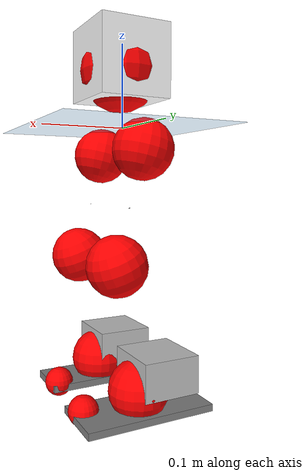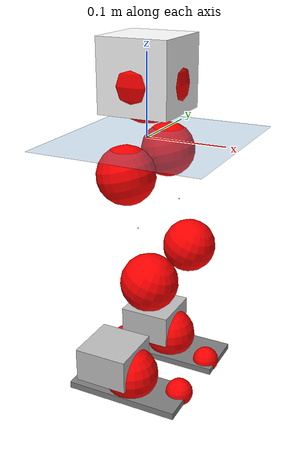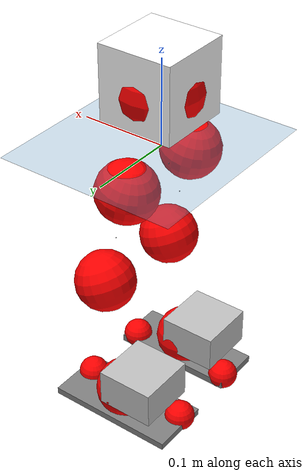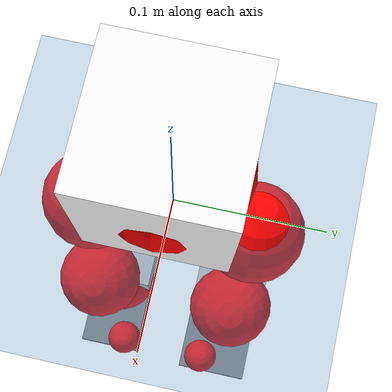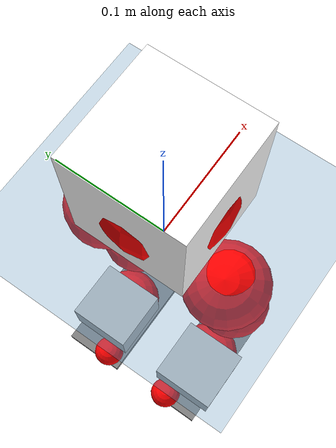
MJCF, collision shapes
<mujoco model="pi_12dof_release_v1">
  <compiler angle="radian" assetdir="assets" balanceinertia="true" inertiafromgeom="false"/>

  <option timestep="0.005" density="1.2" viscosity="2e-05"/>

  <size nkey="1"/>

  <visual>
    <quality shadowsize="8192"/>
    <map shadowclip="0.5"/>
  </visual>

  <default>
    <default class="/">
      <joint armature="0.01" damping="0.01" frictionloss="0.01"/>
      <geom contype="0" conaffinity="0" group="1" solref="-1000 -80"/>
      <site size="0.01 0.005 0.005" group="5"/>
      <general forcelimited="true" biastype="affine" gainprm="20" biasprm="0 -20 -0.5"/>
      <default class="foot">
        <geom size="0.0845 0.036 0.005" type="box" condim="6" group="4" priority="1" friction="0.9 0.2 0.2" solimp="0.015 1 0.005"/>
      </default>
      <default class="reward_collision_sphere">
        <geom group="5" rgba="1 0 0 1"/>
      </default>
    </default>
  </default>

  <asset>
    <texture type="skybox" colorspace="auto" name="//unnamed_texture_0" builtin="gradient" rgb1="0.95 0.95 0.95" rgb2="0.95 0.95 0.95" width="100" height="600"/>
    <texture type="2d" colorspace="auto" name="texplane" builtin="checker" rgb1="0.345 0.575 0.748" rgb2="0.345 0.575 0.748" markrgb="1 1 1" width="512" height="512"/>
    <material name="MatPlane" class="/" texture="texplane" texuniform="true" texrepeat="2 2" specular="0.9"/>
    <mesh name="baselink_1" class="/" file="baselink_1.STL"/>
    <mesh name="r_hip_pitch_link" class="/" file="r_hip_pitch_link.STL"/>
    <mesh name="r_hip_roll_link" class="/" file="r_hip_roll_link.STL"/>
    <mesh name="r_thigh_link" class="/" file="r_thigh_link.STL"/>
    <mesh name="r_calf_link" class="/" file="r_calf_link.STL"/>
    <mesh name="r_ankle_pitch_link" class="/" file="r_ankle_pitch_link.STL"/>
    <mesh name="r_ankle_roll_link" class="/" file="r_ankle_roll_link.STL"/>
    <mesh name="l_hip_pitch_link" class="/" file="l_hip_pitch_link.STL"/>
    <mesh name="l_hip_roll_link" class="/" file="l_hip_roll_link.STL"/>
    <mesh name="l_thigh_link" class="/" file="l_thigh_link.STL"/>
    <mesh name="l_calf_link" class="/" file="l_calf_link.STL"/>
    <mesh name="l_ankle_pitch_link" class="/" file="l_ankle_pitch_link.STL"/>
    <mesh name="l_ankle_roll_link" class="/" file="l_ankle_roll_link.STL"/>
  </asset>

  <worldbody>
    <geom name="floor" class="/" size="100 100 0.125" type="plane" group="0" material="MatPlane"/>
    <light name="toplight_shadow" class="/" pos="0 0 5" dir="0.0990148 0.0990148 -0.990148" type="directional" ambient="0.04 0.04 0.04" diffuse="0.55 0.55 0.55" specular="0.12 0.12 0.12"/>
    <light name="toplight_fill" class="/" pos="0 0 5" dir="0.0990148 0.0990148 -0.990148" type="directional" castshadow="false" ambient="0.04 0.04 0.04" diffuse="0.3 0.3 0.3" specular="0.08 0.08 0.08"/>
    <body name="trunk" pos="0.00224479 -0.00041426 0.000772449" quat="1 -0.000847597 -0.000407762 3.37463e-05">
      <inertial pos="2.69342e-05 -0.00164868 0.0374521" quat="0.695276 0.00981061 0.00949745 0.718613" mass="1.37436" diaginertia="0.00720072 0.00191992 0.00294425"/>
      <joint name="//unnamed_joint_0" type="free"/>
      <geom name="//unnamed_geom_1" class="/" type="mesh" density="0" rgba="1 1 1 1" mesh="baselink_1"/>
      <geom name="//unnamed_geom_2" class="/" size="0.0436022 0.0436022 0.0436022" pos="0 0 0.0750211" type="box" rgba="1 1 1 1"/>
      <geom name="//unnamed_geom_3" class="reward_collision_sphere" size="0.0479624" pos="0 0 0.0656434"/>
      <site name="imu" class="/" pos="-0.00250584 -0.00218692 0.00867999" size="0.00872044"/>
      <camera name="track" class="/" pos="0 -1.47121 0" quat="0.707107 0.707107 0 0" mode="trackcom"/>
      <camera name="ego_camera" class="/" pos="0.0707075 0 0.168797" quat="-0.5 -0.5 0.5 0.5"/>
      <body name="r_hip_pitch_link" pos="0.000150974 -0.0161073 -0.0313904" quat="0.992228 0.00036141 -0.124433 0.000411135">
        <inertial pos="0.000546459 -0.0422515 -0.000219785" quat="-0.0186942 0.704066 -0.0283819 0.70932" mass="0.24656" diaginertia="8.27306e-05 2.08682e-05 6.01139e-05"/>
        <joint name="r_hip_pitch_joint" class="/" pos="0 0 0" axis="-0.0025347 -0.999996 -0.00125066" stiffness="0.000996665" range="-1.73534 1.25554" armature="0.00903824" damping="0.0192731" frictionloss="0.00902735"/>
        <geom name="//unnamed_geom_4" class="/" type="mesh" density="0" rgba="0.75294 0.75294 0.75294 1" mesh="r_hip_pitch_link"/>
        <geom name="//unnamed_geom_5" class="/" size="0.000436022 0.000436022 0.000436022" type="box" rgba="0.75294 0.75294 0.75294 1"/>
        <body name="r_hip_roll_link" pos="-0.000271822 -0.0401629 0.000253065" quat="1 0.000295123 -0.000393915 -0.000318922">
          <inertial pos="-0.000268201 -0.000431342 -0.0595362" quat="0.705883 -0.0792132 -0.0826052 0.699021" mass="0.254624" diaginertia="0.000244775 5.97561e-05 9.5073e-05"/>
          <joint name="r_hip_roll_joint" class="/" pos="0 0 0" axis="-0.999993 0.0033023 0.00188602" stiffness="0.000458936" range="-0.107299 0.485239" armature="0.0091452" damping="0" frictionloss="0.0092763"/>
          <geom name="//unnamed_geom_6" class="/" type="mesh" density="0" rgba="0.75294 0.75294 0.75294 1" mesh="r_hip_roll_link"/>
          <geom name="//unnamed_geom_7" class="/" size="0.000436022 0.000436022 0.000436022" type="box" rgba="0.75294 0.75294 0.75294 1"/>
          <geom name="//unnamed_geom_8" class="reward_collision_sphere" size="0.0348818"/>
          <body name="r_thigh_link" pos="-0.00108651 -0.00096478 -0.0640296" quat="1 -9.13095e-06 2.5471e-05 1.31607e-06">
            <inertial pos="-0.000735276 0.000954667 -0.0442229" quat="0.735109 0.677939 0.0014059 -0.00355928" mass="0.0747177" diaginertia="9.59804e-05 2.10019e-05 4.27289e-05"/>
            <joint name="r_thigh_joint" class="/" pos="0 0 0" axis="0.00177192 0.0019228 -0.999997" range="-0.322005 0.588991" armature="0.00881239" damping="0.0016982" frictionloss="0.0077357"/>
            <geom name="//unnamed_geom_9" class="/" type="mesh" density="0" rgba="0.75294 0.75294 0.75294 1" mesh="r_thigh_link"/>
            <geom name="//unnamed_geom_10" class="/" size="0.000436022 0.000436022 0.000436022" type="box" rgba="0.75294 0.75294 0.75294 1"/>
            <body name="r_calf_link" pos="-0.00109326 -0.00201535 -0.0679304" quat="0.947549 -0.000138786 0.319611 -0.000319373">
              <inertial pos="-0.00107766 -0.00218754 -0.0652115" quat="0.999953 -0.00565747 -0.00577577 0.00542521" mass="0.5361" diaginertia="0.00260843 0.000757649 0.000126928"/>
              <joint name="r_calf_joint" class="/" pos="0 0 0" axis="-0.00309758 -0.999995 -0.000760932" range="-1.60788 0.637403" armature="0.00866424" damping="0.00802394" frictionloss="0.00908128"/>
              <geom name="//unnamed_geom_11" class="/" type="mesh" density="0" rgba="0.75294 0.75294 0.75294 1" mesh="r_calf_link"/>
              <geom name="//unnamed_geom_12" class="/" size="0.000436022 0.000436022 0.000436022" type="box" rgba="0.75294 0.75294 0.75294 1"/>
              <geom name="//unnamed_geom_13" class="reward_collision_sphere" size="0.0348818"/>
              <body name="r_ankle_pitch_link" pos="-0.000361236 -0.00123429 -0.131516" quat="0.98007 -2.34391e-05 -0.19865 1.34257e-05">
                <inertial pos="0.0041525 0.00182365 -0.000867032" quat="0.00223996 0.707618 -0.00259443 0.706587" mass="0.1177" diaginertia="0.000229662 4.87893e-05 8.9072e-05"/>
                <joint name="r_ankle_pitch_joint" class="/" pos="0 0 0" axis="0.0083347 -0.999964 -0.00184354" range="-1.31529 0.497022" armature="0.00887131" damping="0.00276919" frictionloss="0.00858254"/>
                <geom name="//unnamed_geom_14" class="/" type="mesh" density="0" rgba="0.75294 0.75294 0.75294 1" mesh="r_ankle_pitch_link"/>
                <geom name="//unnamed_geom_15" class="/" size="0.0340097 0.0348818 0.0218011" type="box" rgba="0.75294 0.75294 0.75294 1"/>
                <body name="r_ankle_roll_link" pos="0.0717496 0.00240207 0.000889759" quat="1 9.4467e-05 0.000165085 -0.000112462">
                  <inertial pos="-0.0223938 0.000642789 -0.0138142" quat="0.558727 0.437396 0.435042 0.554299" mass="0.344211" diaginertia="0.000845661 0.000222597 0.000204184"/>
                  <joint name="r_ankle_roll_joint" class="/" pos="0 0 0" axis="-0.999932 0.00920079 0.00714519" range="-0.188034 0.159933" armature="0.00950147" damping="0.00811838" frictionloss="0.00875674"/>
                  <geom name="//unnamed_geom_16" class="/" type="mesh" density="0" rgba="0.75294 0.75294 0.75294 1" mesh="r_ankle_roll_link"/>
                  <geom name="//unnamed_geom_17" class="/" type="mesh" rgba="0.75294 0.75294 0.75294 1" mesh="r_ankle_roll_link"/>
                  <geom name="right_foot" class="foot" size="0.0737811 0.030161 0.0043272" pos="-0.0480811 0 -0.0412616"/>
                  <geom name="//unnamed_geom_19" class="reward_collision_sphere" size="0.0348818" pos="-0.0471383 0 -0.0187553"/>
                  <geom name="//unnamed_geom_20" class="reward_collision_sphere" size="0.0174409" pos="0.0141415 0.0147121 -0.0375105"/>
                  <geom name="//unnamed_geom_21" class="reward_collision_sphere" size="0.0174409" pos="-0.113132 0.0147121 -0.0375105"/>
                  <site name="right_foot" class="foot" pos="-0.0480811 0 -0.0412616" size="0.00872044"/>
                </body>
              </body>
            </body>
          </body>
        </body>
      </body>
      <body name="l_hip_pitch_link" pos="-0.000188012 0.0166899 -0.0313121" quat="0.992199 -1.27336e-06 -0.124666 2.81552e-06">
        <inertial pos="-0.000191024 0.0414649 -0.000710898" quat="-0.0407939 0.697858 0.0264495 0.714585" mass="0.263696" diaginertia="9.58307e-05 2.2623e-05 7.43608e-05"/>
        <joint name="l_hip_pitch_joint" class="/" pos="0 0 0" axis="0.00884262 0.999945 0.00566447" range="-1.26804 1.75379" armature="0.00858632" damping="0.00641181" frictionloss="0.00877568"/>
        <geom name="//unnamed_geom_22" class="/" type="mesh" density="0" rgba="0.75294 0.75294 0.75294 1" mesh="l_hip_pitch_link"/>
        <geom name="//unnamed_geom_23" class="/" size="0.000436022 0.000436022 0.000436022" type="box" rgba="0.75294 0.75294 0.75294 1"/>
        <body name="l_hip_roll_link" pos="0.000325843 0.0397288 0.00181261" quat="1 -0.00022525 3.92563e-05 4.88607e-05">
          <inertial pos="-0.00139532 2.67646e-05 -0.0573806" quat="0.697197 -0.0791726 -0.0800401 0.707984" mass="0.261713" diaginertia="0.000245939 5.93006e-05 9.25057e-05"/>
          <joint name="l_hip_roll_joint" class="/" pos="0 0 0" axis="-0.999991 -8.20869e-06 0.00416605" range="-0.509654 0.13675" armature="0.0090644" damping="0.00509202" frictionloss="0.00916092"/>
          <geom name="//unnamed_geom_24" class="/" type="mesh" density="0" rgba="0.75294 0.75294 0.75294 1" mesh="l_hip_roll_link"/>
          <geom name="//unnamed_geom_25" class="/" size="0.000436022 0.000436022 0.000436022" type="box" rgba="0.75294 0.75294 0.75294 1"/>
          <geom name="//unnamed_geom_26" class="reward_collision_sphere" size="0.0348818"/>
          <body name="l_thigh_link" pos="6.31759e-05 -0.000545226 -0.0668873" quat="1 -6.44197e-06 3.19367e-05 1.59688e-05">
            <inertial pos="0.00136143 0.000712899 -0.0448995" quat="0.67621 0.736705 0.00171187 -0.00166403" mass="0.0738153" diaginertia="9.2418e-05 2.02011e-05 4.03469e-05"/>
            <joint name="l_thigh_joint" class="/" pos="0 0 0" axis="-0.00387408 -0.0020889 -0.99999" range="-0.600964 0.305606" armature="0.00846727" damping="0" frictionloss="0.00848147"/>
            <geom name="//unnamed_geom_27" class="/" type="mesh" density="0" rgba="0.75294 0.75294 0.75294 1" mesh="l_thigh_link"/>
            <geom name="//unnamed_geom_28" class="/" size="0.000436022 0.000436022 0.000436022" type="box" rgba="0.75294 0.75294 0.75294 1"/>
            <body name="l_calf_link" pos="-0.000708375 0.000925529 -0.0655074" quat="0.947404 -0.000258667 0.320039 -0.000660402">
              <inertial pos="0.00242997 0.00265509 -0.0679212" quat="0.99998 0.00416512 0.00180204 0.0044063" mass="0.541073" diaginertia="0.00263773 0.000756204 0.000125964"/>
              <joint name="l_calf_joint" class="/" pos="0 0 0" axis="-0.000281815 0.999998 0.00180071" stiffness="0.00338548" range="-0.657183 1.65786" armature="0.00837552" damping="0.00677329" frictionloss="0.00811867"/>
              <geom name="//unnamed_geom_29" class="/" type="mesh" density="0" rgba="0.75294 0.75294 0.75294 1" mesh="l_calf_link"/>
              <geom name="//unnamed_geom_30" class="/" size="0.000436022 0.000436022 0.000436022" type="box" rgba="0.75294 0.75294 0.75294 1"/>
              <geom name="//unnamed_geom_31" class="reward_collision_sphere" size="0.0348818"/>
              <body name="l_ankle_pitch_link" pos="0.00133265 0.000408347 -0.133432" quat="0.980063 3.6707e-05 -0.198686 1.71039e-05">
                <inertial pos="0.00438626 -0.000524722 -3.74221e-05" quat="-0.00175905 0.706332 0.00227899 0.707875" mass="0.114474" diaginertia="0.00022854 4.78248e-05 8.70395e-05"/>
                <joint name="l_ankle_pitch_joint" class="/" pos="0 0 0" axis="9.57614e-05 1 -0.000614456" range="-0.504008 1.31449" armature="0.00869257" damping="0.011599" frictionloss="0.00833478"/>
                <geom name="//unnamed_geom_32" class="/" type="mesh" density="0" rgba="0.75294 0.75294 0.75294 1" mesh="l_ankle_pitch_link"/>
                <geom name="//unnamed_geom_33" class="/" size="0.0340097 0.0348818 0.0218011" type="box" rgba="0.75294 0.75294 0.75294 1"/>
                <body name="l_ankle_roll_link" pos="0.0714106 0.000330322 -0.000795477" quat="1 -0.000236479 -0.000101522 9.04608e-05">
                  <inertial pos="-0.0241493 6.0982e-05 -0.0134433" quat="0.558212 0.432087 0.434334 0.559513" mass="0.34161" diaginertia="0.000830937 0.000221027 0.000208176"/>
                  <joint name="l_ankle_roll_joint" class="/" pos="0 0 0" axis="-0.999956 -0.00427371 -0.00830366" range="-0.152485 0.136203" armature="0.00913337" damping="0.0116355" frictionloss="0.00914754"/>
                  <geom name="//unnamed_geom_34" class="/" type="mesh" density="0" rgba="0.75294 0.75294 0.75294 1" mesh="l_ankle_roll_link"/>
                  <geom name="//unnamed_geom_35" class="/" type="mesh" rgba="0.75294 0.75294 0.75294 1" mesh="l_ankle_roll_link"/>
                  <geom name="left_foot" class="foot" size="0.0769836 0.0352198 0.00406409" pos="-0.0480811 0 -0.0412616"/>
                  <geom name="//unnamed_geom_37" class="reward_collision_sphere" size="0.0348818" pos="-0.0471383 0 -0.0187553"/>
                  <geom name="//unnamed_geom_38" class="reward_collision_sphere" size="0.0174409" pos="0.0141415 -0.0147121 -0.0375105"/>
                  <geom name="//unnamed_geom_39" class="reward_collision_sphere" size="0.0174409" pos="-0.113132 -0.0147121 -0.0375105"/>
                  <site name="left_foot" class="foot" pos="-0.0480811 0 -0.0412616" size="0.00872044"/>
                </body>
              </body>
            </body>
          </body>
        </body>
      </body>
    </body>
  </worldbody>

  <contact>
    <pair class="/" geom1="floor" geom2="right_foot" name="//unnamed_contact_1"/>
    <pair class="/" geom1="floor" geom2="left_foot" name="//unnamed_contact_0"/>
  </contact>

  <actuator>
    <general name="r_hip_pitch_joint" class="/" joint="r_hip_pitch_joint" forcerange="-18.559 18.559" gainprm="17.5127" biasprm="0 -17.5127 -0.4295"/>
    <general name="r_hip_roll_joint" class="/" joint="r_hip_roll_joint" forcerange="-18.2405 18.2405" gainprm="17.5127" biasprm="0 -17.5127 -0.4295"/>
    <general name="r_thigh_joint" class="/" joint="r_thigh_joint" forcerange="-18.2032 18.2032" gainprm="17.5127" biasprm="0 -17.5127 -0.4295"/>
    <general name="r_calf_joint" class="/" joint="r_calf_joint" forcerange="-19.7882 19.7882" gainprm="17.5127" biasprm="0 -17.5127 -0.4295"/>
    <general name="r_ankle_pitch_joint" class="/" joint="r_ankle_pitch_joint" forcerange="-18.2179 18.2179" gainprm="17.5127" biasprm="0 -17.5127 -0.4295"/>
    <general name="r_ankle_roll_joint" class="/" joint="r_ankle_roll_joint" forcerange="-17.086 17.086" gainprm="17.5127" biasprm="0 -17.5127 -0.4295"/>
    <general name="l_hip_pitch_joint" class="/" joint="l_hip_pitch_joint" forcerange="-18.3356 18.3356" gainprm="17.5127" biasprm="0 -17.5127 -0.4295"/>
    <general name="l_hip_roll_joint" class="/" joint="l_hip_roll_joint" forcerange="-18.6665 18.6665" gainprm="17.5127" biasprm="0 -17.5127 -0.4295"/>
    <general name="l_thigh_joint" class="/" joint="l_thigh_joint" forcerange="-17.9881 17.9881" gainprm="17.5127" biasprm="0 -17.5127 -0.4295"/>
    <general name="l_calf_joint" class="/" joint="l_calf_joint" forcerange="-18.3776 18.3776" gainprm="17.5127" biasprm="0 -17.5127 -0.4295"/>
    <general name="l_ankle_pitch_joint" class="/" joint="l_ankle_pitch_joint" forcerange="-17.913 17.913" gainprm="17.5127" biasprm="0 -17.5127 -0.4295"/>
    <general name="l_ankle_roll_joint" class="/" joint="l_ankle_roll_joint" forcerange="-18.4732 18.4732" gainprm="17.5127" biasprm="0 -17.5127 -0.4295"/>
  </actuator>

  <sensor>
    <gyro site="imu" name="imu_angular_velocity"/>
    <velocimeter site="imu" name="imu_linear_velocity"/>
    <framelinvel objtype="site" objname="left_foot" name="left_foot_global_linear_velocity"/>
    <framelinvel objtype="site" objname="right_foot" name="right_foot_global_linear_velocity"/>
  </sensor>

  <keyframe>
    <key name="home" qpos="0 0 0.291 1 0 0 0 0.4 0 0 -0.8 0.4 0 -0.4 0 0 0.8 -0.4 0"/>
  </keyframe>
</mujoco>
